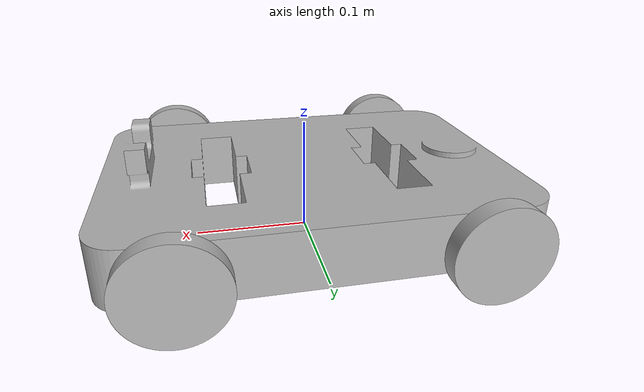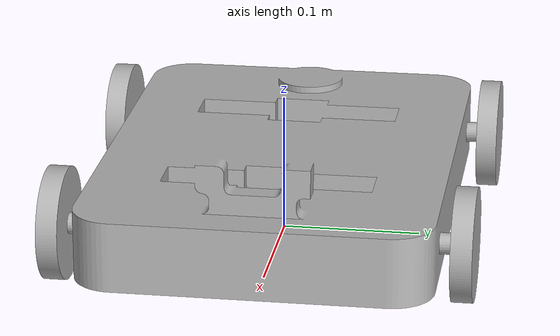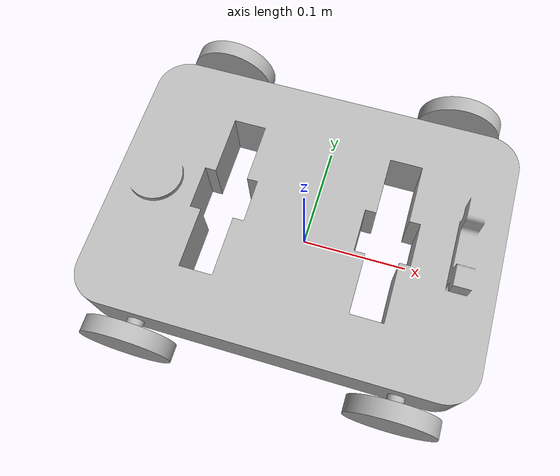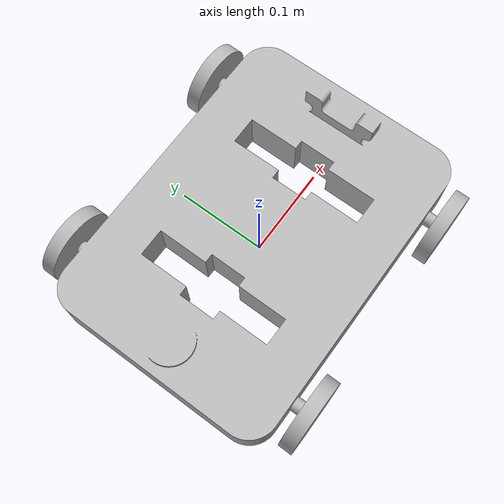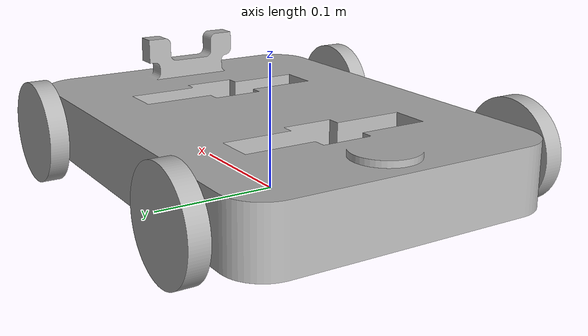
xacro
<?xml version="1.0" ?>
<robot name="mobilebot" xmlns:xacro="http://www.ros.org/wiki/xacro">

<xacro:include filename="$(find mobilebot_description)/urdf/materials.xacro" />
<xacro:include filename="$(find mobilebot_description)/urdf/mobilebot.trans" />
<xacro:include filename="$(find mobilebot_description)/urdf/mobilebot.gazebo" />

<!-- BASE LINK -->
<link name="base_link">
  <inertial>
    <origin xyz="0.0005792285328756672 7.970344944745154e-07 0.0403411412663239" rpy="0 0 0"/>
    <mass value="4.079939844889388"/>
    <inertia ixx="0.023714" iyy="0.044684" izz="0.066606" ixy="-0.0" iyz="-0.0" ixz="-0.000114"/>
  </inertial>
  <visual>
    <origin xyz="0 0 0" rpy="0 0 0"/>
    <geometry>
      <mesh filename="package://mobilebot_description/meshes/base_link.stl" scale="0.001 0.001 0.001"/>
    </geometry>
    <material name="silver"/>
  </visual>
  <collision>
    <origin xyz="0 0 0" rpy="0 0 0"/>
    <geometry>
      <mesh filename="package://mobilebot_description/meshes/base_link.stl" scale="0.001 0.001 0.001"/>
    </geometry>
  </collision>
</link>

<!-- LEFT FRONT WHEEL -->
<link name="leftw_front_1">
  <inertial>
    <origin xyz="-6.938893903907228e-17 -0.007500000000000034 1.3877787807814457e-17" rpy="0 0 0"/>
    <mass value="0.07012034802812415"/>
    <inertia ixx="2.9e-05" iyy="5.6e-05" izz="2.9e-05" ixy="0.0" iyz="-0.0" ixz="-0.0"/>
  </inertial>
  <visual>
    <origin xyz="0.115 0.135 -0.04" rpy="0 0 0"/>
    <geometry>
      <mesh filename="package://mobilebot_description/meshes/leftw_front_1.stl" scale="0.001 0.001 0.001"/>
    </geometry>
    <material name="silver"/>
  </visual>
  <collision>
    <origin xyz="0.115 0.135 -0.04" rpy="0 0 0"/>
    <geometry>
      <mesh filename="package://mobilebot_description/meshes/leftw_front_1.stl" scale="0.001 0.001 0.001"/>
    </geometry>
  </collision>
</link>

<!-- LEFT BACK WHEEL -->
<link name="leftw_back_1">
  <inertial>
    <origin xyz="-5.551115123125783e-17 -0.007500000000000007 2.7755575615628914e-17" rpy="0 0 0"/>
    <mass value="0.07012034802812417"/>
    <inertia ixx="2.9e-05" iyy="5.6e-05" izz="2.9e-05" ixy="-0.0" iyz="-0.0" ixz="0.0"/>
  </inertial>
  <visual>
    <origin xyz="-0.115 0.135 -0.04" rpy="0 0 0"/>
    <geometry>
      <mesh filename="package://mobilebot_description/meshes/leftw_back_1.stl" scale="0.001 0.001 0.001"/>
    </geometry>
    <material name="silver"/>
  </visual>
  <collision>
    <origin xyz="-0.115 0.135 -0.04" rpy="0 0 0"/>
    <geometry>
      <mesh filename="package://mobilebot_description/meshes/leftw_back_1.stl" scale="0.001 0.001 0.001"/>
    </geometry>
  </collision>
</link>

<!-- RIGHT BACK WHEEL -->
<link name="rightw_back_1">
  <inertial>
    <origin xyz="-1.5265566588595902e-16 0.007500000000000007 3.469446951953614e-17" rpy="0 0 0"/>
    <mass value="0.07012034802812417"/>
    <inertia ixx="2.9e-05" iyy="5.6e-05" izz="2.9e-05" ixy="0.0" iyz="-0.0" ixz="-0.0"/>
  </inertial>
  <visual>
    <origin xyz="-0.115 -0.135 -0.04" rpy="0 0 0"/>
    <geometry>
      <mesh filename="package://mobilebot_description/meshes/rightw_back_1.stl" scale="0.001 0.001 0.001"/>
    </geometry>
    <material name="silver"/>
  </visual>
  <collision>
    <origin xyz="-0.115 -0.135 -0.04" rpy="0 0 0"/>
    <geometry>
      <mesh filename="package://mobilebot_description/meshes/rightw_back_1.stl" scale="0.001 0.001 0.001"/>
    </geometry>
  </collision>
</link>

<!-- RIGHT FRONT WHEEL -->
<link name="rightw_front_1">
  <inertial>
    <origin xyz="0.0 0.007500000000000007 5.551115123125783e-17" rpy="0 0 0"/>
    <mass value="0.07012034802812417"/>
    <inertia ixx="2.9e-05" iyy="5.6e-05" izz="2.9e-05" ixy="0.0" iyz="-0.0" ixz="-0.0"/>
  </inertial>
  <visual>
    <origin xyz="0.115 -0.135 -0.04" rpy="0 0 0"/>
    <geometry>
      <mesh filename="package://mobilebot_description/meshes/rightw_front_1.stl" scale="0.001 0.001 0.001"/>
    </geometry>
    <material name="silver"/>
  </visual>
  <collision>
    <origin xyz="0.115 -0.135 -0.04" rpy="0 0 0"/>
    <geometry>
      <mesh filename="package://mobilebot_description/meshes/rightw_front_1.stl" scale="0.001 0.001 0.001"/>
    </geometry>
  </collision>
</link>

<!-- WHEEL JOINTS -->
<joint name="Revolute 2" type="continuous">
  <origin xyz="-0.115 -0.135 0.04" rpy="0 0 0"/>
  <parent link="base_link"/>
  <child link="leftw_front_1"/>
  <axis xyz="0.0 1.0 0.0"/>
</joint>

<joint name="Revolute 3" type="continuous">
  <origin xyz="0.115 -0.135 0.04" rpy="0 0 0"/>
  <parent link="base_link"/>
  <child link="leftw_back_1"/>
  <axis xyz="0.0 1.0 0.0"/>
</joint>

<joint name="Revolute 6" type="continuous">
  <origin xyz="0.115 0.135 0.04" rpy="0 0 0"/>
  <parent link="base_link"/>
  <child link="rightw_back_1"/>
  <axis xyz="0.0 1.0 0.0"/>
</joint>

<joint name="Revolute 7" type="continuous">
  <origin xyz="-0.115 0.135 0.04" rpy="0 0 0"/>
  <parent link="base_link"/>
  <child link="rightw_front_1"/>
  <axis xyz="0.0 1.0 0.0"/>
</joint>

</robot>

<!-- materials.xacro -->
<robot name="mobilebot" xmlns:xacro="http://www.ros.org/wiki/xacro" >

<material name="silver">
  <color rgba="0.700 0.700 0.700 1.000"/>
</material>

</robot>
